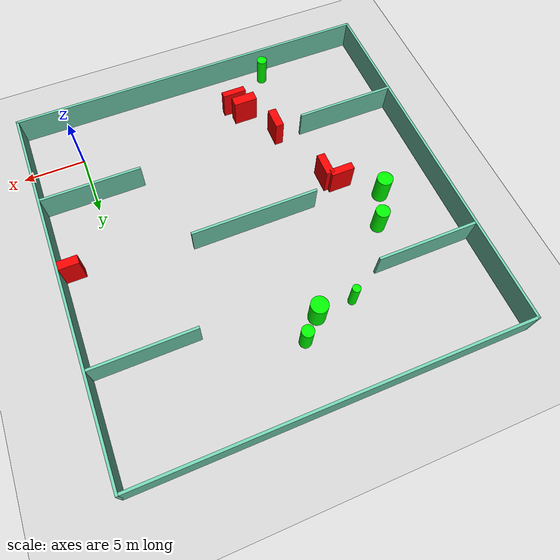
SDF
<sdf version="1.7">
 <world name="default">
  <light name="sun" type="directional">
   <pose>0 0 10 0 -0 0</pose>
   <diffuse>0.8 0.8 0.8 1</diffuse>
   <specular>0.2 0.2 0.2 1</specular>
   <attenuation>
    <range>1000</range>
    <constant>0.9</constant>
    <linear>0.01</linear>
    <quadratic>0.001</quadratic>
   </attenuation>
   <direction>-0.5 0.1 -0.9</direction>
   <spot><inner_angle>0</inner_angle><outer_angle>0</outer_angle><falloff>0</falloff></spot>
  </light>
  <model name="ground_plane">
   <static>1</static>
   <link name="link">
    <collision name="collision">
     <geometry><plane><normal>0 0 1</normal><size>100 100</size></plane></geometry>
     <surface>
      <contact><collide_bitmask>65535</collide_bitmask></contact>
      <friction><ode><mu>100</mu><mu2>50</mu2></ode></friction>
     </surface>
    </collision>
    <visual name="visual">
     <cast_shadows>0</cast_shadows>
     <geometry><plane><normal>0 0 1</normal><size>100 100</size></plane></geometry>
     <material>
      <script><uri>file://media/materials/scripts/gazebo.material</uri><name>Gazebo/Grey</name></script>
     </material>
    </visual>
   </link>
  </model>
  <gravity>0 0 -9.8</gravity>
  <magnetic_field>6e-06 2.3e-05 -4.2e-05</magnetic_field>
  <atmosphere type="adiabatic"/>
  <physics type="ode">
   <max_step_size>0.001</max_step_size>
   <real_time_factor>1</real_time_factor>
   <real_time_update_rate>1000</real_time_update_rate>
  </physics>
  <scene><ambient>0.4 0.4 0.4 1</ambient><background>0.7 0.7 0.7 1</background><shadows>1</shadows></scene>
  <spherical_coordinates>
   <surface_model>EARTH_WGS84</surface_model>
   <latitude_deg>0</latitude_deg>
   <longitude_deg>0</longitude_deg>
   <elevation>0</elevation>
   <heading_deg>0</heading_deg>
  </spherical_coordinates>
  <model name="my_base_walls">
   <link name="Wall_10">
    <collision name="Wall_10_Collision">
     <geometry><box><size>8.2 0.2 2.5</size></box></geometry>
     <pose>0 0 1.25 0 -0 0</pose>
    </collision>
    <visual name="Wall_10_Visual">
     <pose>0 0 1.25 0 -0 0</pose>
     <geometry><box><size>8.2 0.2 2.5</size></box></geometry>
     <material>
      <script><uri>file://media/materials/scripts/gazebo.material</uri><name>Gazebo/Grey</name></script>
      <ambient>0.435294 0.796078 0.67451 1</ambient>
     </material>
     <meta><layer>0</layer></meta>
    </visual>
    <pose>-11 -7 0 0 -0 0</pose>
   </link>
   <link name="Wall_12">
    <collision name="Wall_12_Collision">
     <geometry><box><size>8.2 0.2 2.5</size></box></geometry>
     <pose>0 0 1.25 0 -0 0</pose>
    </collision>
    <visual name="Wall_12_Visual">
     <pose>0 0 1.25 0 -0 0</pose>
     <geometry><box><size>8.2 0.2 2.5</size></box></geometry>
     <material>
      <script><uri>file://media/materials/scripts/gazebo.material</uri><name>Gazebo/Grey</name></script>
      <ambient>0.435294 0.796078 0.67451 1</ambient>
     </material>
     <meta><layer>0</layer></meta>
    </visual>
    <pose>-11 7 0 0 -0 0</pose>
   </link>
   <link name="Wall_14">
    <collision name="Wall_14_Collision">
     <geometry><box><size>8.2 0.2 2.5</size></box></geometry>
     <pose>0 0 1.25 0 -0 0</pose>
    </collision>
    <visual name="Wall_14_Visual">
     <pose>0 0 1.25 0 -0 0</pose>
     <geometry><box><size>8.2 0.2 2.5</size></box></geometry>
     <material>
      <script><uri>file://media/materials/scripts/gazebo.material</uri><name>Gazebo/Grey</name></script>
      <ambient>0.435294 0.796078 0.67451 1</ambient>
     </material>
     <meta><layer>0</layer></meta>
    </visual>
    <pose>11 7 0 0 -0 3.14159</pose>
   </link>
   <link name="Wall_16">
    <collision name="Wall_16_Collision">
     <geometry><box><size>10.2 0.2 2.5</size></box></geometry>
     <pose>0 0 1.25 0 -0 0</pose>
    </collision>
    <visual name="Wall_16_Visual">
     <pose>0 0 1.25 0 -0 0</pose>
     <geometry><box><size>10.2 0.2 2.5</size></box></geometry>
     <material>
      <script><uri>file://media/materials/scripts/gazebo.material</uri><name>Gazebo/Grey</name></script>
      <ambient>0.435294 0.796078 0.67451 1</ambient>
     </material>
     <meta><layer>0</layer></meta>
    </visual>
    <pose>0 0 0 0 -0 3.14159</pose>
   </link>
   <link name="Wall_2">
    <collision name="Wall_2_Collision">
     <geometry><box><size>30.2 0.2 2.5</size></box></geometry>
     <pose>0 0 1.25 0 -0 0</pose>
    </collision>
    <visual name="Wall_2_Visual">
     <pose>0 0 1.25 0 -0 0</pose>
     <geometry><box><size>30.2 0.2 2.5</size></box></geometry>
     <material>
      <script><uri>file://media/materials/scripts/gazebo.material</uri><name>Gazebo/Grey</name></script>
      <ambient>0.435294 0.796078 0.67451 1</ambient>
     </material>
     <meta><layer>0</layer></meta>
    </visual>
    <pose>0 -15 0 0 -0 3.14159</pose>
   </link>
   <link name="Wall_3">
    <collision name="Wall_3_Collision">
     <geometry><box><size>30.2 0.2 2.5</size></box></geometry>
     <pose>0 0 1.25 0 -0 0</pose>
    </collision>
    <visual name="Wall_3_Visual">
     <pose>0 0 1.25 0 -0 0</pose>
     <geometry><box><size>30.2 0.2 2.5</size></box></geometry>
     <material>
      <script><uri>file://media/materials/scripts/gazebo.material</uri><name>Gazebo/Grey</name></script>
      <ambient>0.435294 0.796078 0.67451 1</ambient>
     </material>
     <meta><layer>0</layer></meta>
    </visual>
    <pose>-15 0 0 0 -0 1.5708</pose>
   </link>
   <link name="Wall_4">
    <collision name="Wall_4_Collision">
     <geometry><box><size>30.2 0.2 2.5</size></box></geometry>
     <pose>0 0 1.25 0 -0 0</pose>
    </collision>
    <visual name="Wall_4_Visual">
     <pose>0 0 1.25 0 -0 0</pose>
     <geometry><box><size>30.2 0.2 2.5</size></box></geometry>
     <material>
      <script><uri>file://media/materials/scripts/gazebo.material</uri><name>Gazebo/Grey</name></script>
      <ambient>0.435294 0.796078 0.67451 1</ambient>
     </material>
     <meta><layer>0</layer></meta>
    </visual>
    <pose>0 15 0 0 -0 0</pose>
   </link>
   <link name="Wall_6">
    <collision name="Wall_6_Collision">
     <geometry><box><size>30.2 0.2 2.5</size></box></geometry>
     <pose>0 0 1.25 0 -0 0</pose>
    </collision>
    <visual name="Wall_6_Visual">
     <pose>0 0 1.25 0 -0 0</pose>
     <geometry><box><size>30.2 0.2 2.5</size></box></geometry>
     <material>
      <script><uri>file://media/materials/scripts/gazebo.material</uri><name>Gazebo/Grey</name></script>
      <ambient>0.435294 0.796078 0.67451 1</ambient>
     </material>
     <meta><layer>0</layer></meta>
    </visual>
    <pose>15 0 0 0 -0 1.5708</pose>
   </link>
   <link name="Wall_8">
    <collision name="Wall_8_Collision">
     <geometry><box><size>8.2 0.2 2.5</size></box></geometry>
     <pose>0 0 1.25 0 -0 0</pose>
    </collision>
    <visual name="Wall_8_Visual">
     <pose>0 0 1.25 0 -0 0</pose>
     <geometry><box><size>8.2 0.2 2.5</size></box></geometry>
     <material>
      <script><uri>file://media/materials/scripts/gazebo.material</uri><name>Gazebo/Grey</name></script>
      <ambient>0.435294 0.796078 0.67451 1</ambient>
     </material>
     <meta><layer>0</layer></meta>
    </visual>
    <pose>11 -7 0 0 -0 3.14159</pose>
   </link>
   <static>1</static>
   <pose>-11 11 0 0 -0 0</pose>
  </model>
  <model name="cylinder1">
   <static>1</static>
   <link name="link">
    <inertial>
     <mass>1</mass>
     <inertia><ixx>0.5</ixx><ixy>0</ixy><ixz>0</ixz><iyy>0.5</iyy><iyz>0</iyz><izz>1</izz></inertia>
    </inertial>
    <collision name="collision">
     <geometry><cylinder><radius>0.5588582032144873</radius><length>2.5</length></cylinder></geometry>
    </collision>
    <visual name="visual">
     <geometry><cylinder><radius>0.5588582032144873</radius><length>2.5</length></cylinder></geometry>
     <material>
      <ambient>0 1 0 1</ambient>
      <diffuse>0 1 0 1</diffuse>
      <specular>0.1 0.1 0.1 1</specular>
      <emissive>0 0 0 0</emissive>
     </material>
    </visual>
   </link>
   <pose>-19.963105979687537 14.566138077887445 1.25 0 0 0</pose>
  </model>
  <model name="cylinder2">
   <static>1</static>
   <link name="link">
    <inertial>
     <mass>1</mass>
     <inertia><ixx>0.5</ixx><ixy>0</ixy><ixz>0</ixz><iyy>0.5</iyy><iyz>0</iyz><izz>1</izz></inertia>
    </inertial>
    <collision name="collision">
     <geometry><cylinder><radius>0.6671238472813816</radius><length>2.5</length></cylinder></geometry>
    </collision>
    <visual name="visual">
     <geometry><cylinder><radius>0.6671238472813816</radius><length>2.5</length></cylinder></geometry>
     <material>
      <ambient>0 1 0 1</ambient>
      <diffuse>0 1 0 1</diffuse>
      <specular>0.1 0.1 0.1 1</specular>
      <emissive>0 0 0 0</emissive>
     </material>
    </visual>
   </link>
   <pose>-12.386513296379604 19.587198791284244 1.25 0 0 0</pose>
  </model>
  <model name="cylinder3">
   <static>1</static>
   <link name="link">
    <inertial>
     <mass>1</mass>
     <inertia><ixx>0.5</ixx><ixy>0</ixy><ixz>0</ixz><iyy>0.5</iyy><iyz>0</iyz><izz>1</izz></inertia>
    </inertial>
    <collision name="collision">
     <geometry><cylinder><radius>0.4214650918057804</radius><length>2.5</length></cylinder></geometry>
    </collision>
    <visual name="visual">
     <geometry><cylinder><radius>0.4214650918057804</radius><length>2.5</length></cylinder></geometry>
     <material>
      <ambient>0 1 0 1</ambient>
      <diffuse>0 1 0 1</diffuse>
      <specular>0.1 0.1 0.1 1</specular>
      <emissive>0 0 0 0</emissive>
     </material>
    </visual>
   </link>
   <pose>-17.17963439554217 -2.818555305798168 1.25 0 0 0</pose>
  </model>
  <model name="cylinder4">
   <static>1</static>
   <link name="link">
    <inertial>
     <mass>1</mass>
     <inertia><ixx>0.5</ixx><ixy>0</ixy><ixz>0</ixz><iyy>0.5</iyy><iyz>0</iyz><izz>1</izz></inertia>
    </inertial>
    <collision name="collision">
     <geometry><cylinder><radius>0.47412017186130206</radius><length>2.5</length></cylinder></geometry>
    </collision>
    <visual name="visual">
     <geometry><cylinder><radius>0.47412017186130206</radius><length>2.5</length></cylinder></geometry>
     <material>
      <ambient>0 1 0 1</ambient>
      <diffuse>0 1 0 1</diffuse>
      <specular>0.1 0.1 0.1 1</specular>
      <emissive>0 0 0 0</emissive>
     </material>
    </visual>
   </link>
   <pose>-10.857644709719553 20.999874249216035 1.25 0 0 0</pose>
  </model>
  <model name="cylinder5">
   <static>1</static>
   <link name="link">
    <inertial>
     <mass>1</mass>
     <inertia><ixx>0.5</ixx><ixy>0</ixy><ixz>0</ixz><iyy>0.5</iyy><iyz>0</iyz><izz>1</izz></inertia>
    </inertial>
    <collision name="collision">
     <geometry><cylinder><radius>0.31796051744195464</radius><length>2.5</length></cylinder></geometry>
    </collision>
    <visual name="visual">
     <geometry><cylinder><radius>0.31796051744195464</radius><length>2.5</length></cylinder></geometry>
     <material>
      <ambient>0 1 0 1</ambient>
      <diffuse>0 1 0 1</diffuse>
      <specular>0.1 0.1 0.1 1</specular>
      <emissive>0 0 0 0</emissive>
     </material>
    </visual>
   </link>
   <pose>-15.322027999451715 19.437191563345056 1.25 0 0 0</pose>
  </model>
  <model name="cylinder6">
   <static>1</static>
   <link name="link">
    <inertial>
     <mass>1</mass>
     <inertia><ixx>0.5</ixx><ixy>0</ixy><ixz>0</ixz><iyy>0.5</iyy><iyz>0</iyz><izz>1</izz></inertia>
    </inertial>
    <collision name="collision">
     <geometry><cylinder><radius>0.6276491564176603</radius><length>2.5</length></cylinder></geometry>
    </collision>
    <visual name="visual">
     <geometry><cylinder><radius>0.6276491564176603</radius><length>2.5</length></cylinder></geometry>
     <material>
      <ambient>0 1 0 1</ambient>
      <diffuse>0 1 0 1</diffuse>
      <specular>0.1 0.1 0.1 1</specular>
      <emissive>0 0 0 0</emissive>
     </material>
    </visual>
   </link>
   <pose>-21.466237744196143 12.048290866379793 1.25 0 0 0</pose>
  </model>
  <model name="box1">
   <static>1</static>
   <link name="link">
    <inertial>
     <mass>1</mass>
     <inertia><ixx>0.083</ixx><ixy>0</ixy><ixz>0</ixz><iyy>0.083</iyy><iyz>0</iyz><izz>0.083</izz></inertia>
    </inertial>
    <collision name="collision">
     <geometry><box><size>0.6551913076452598 1.8951886869540067 2.5</size></box></geometry>
    </collision>
    <visual name="visual">
     <geometry><box><size>0.6551913076452598 1.8951886869540067 2.5</size></box></geometry>
     <material>
      <ambient>1 0 0 1</ambient>
      <diffuse>1 0 0 1</diffuse>
      <specular>0.1 0.1 0.1 1</specular>
      <emissive>0 0 0 0</emissive>
     </material>
    </visual>
    <sensor name="my_contact" type="contact">
     <contact><collision>box_collision</collision><topic>__default_topic__</topic></contact>
    </sensor>
   </link>
   <pose>-17.757029643656605 9.080850727454159 1.25 0 0 0</pose>
  </model>
  <model name="box2">
   <static>1</static>
   <link name="link">
    <inertial>
     <mass>1</mass>
     <inertia><ixx>0.083</ixx><ixy>0</ixy><ixz>0</ixz><iyy>0.083</iyy><iyz>0</iyz><izz>0.083</izz></inertia>
    </inertial>
    <collision name="collision">
     <geometry><box><size>0.6752672432906754 1.7461128963984731 2.5</size></box></geometry>
    </collision>
    <visual name="visual">
     <geometry><box><size>0.6752672432906754 1.7461128963984731 2.5</size></box></geometry>
     <material>
      <ambient>1 0 0 1</ambient>
      <diffuse>1 0 0 1</diffuse>
      <specular>0.1 0.1 0.1 1</specular>
      <emissive>0 0 0 0</emissive>
     </material>
    </visual>
    <sensor name="my_contact" type="contact">
     <contact><collision>box_collision</collision><topic>__default_topic__</topic></contact>
    </sensor>
   </link>
   <pose>-15.872242829329572 3.428533248529111 1.25 0 0 0</pose>
  </model>
  <model name="box3">
   <static>1</static>
   <link name="link">
    <inertial>
     <mass>1</mass>
     <inertia><ixx>0.083</ixx><ixy>0</ixy><ixz>0</ixz><iyy>0.083</iyy><iyz>0</iyz><izz>0.083</izz></inertia>
    </inertial>
    <collision name="collision">
     <geometry><box><size>1.5898282219106443 0.7063874891403803 2.5</size></box></geometry>
    </collision>
    <visual name="visual">
     <geometry><box><size>1.5898282219106443 0.7063874891403803 2.5</size></box></geometry>
     <material>
      <ambient>1 0 0 1</ambient>
      <diffuse>1 0 0 1</diffuse>
      <specular>0.1 0.1 0.1 1</specular>
      <emissive>0 0 0 0</emissive>
     </material>
    </visual>
    <sensor name="my_contact" type="contact">
     <contact><collision>box_collision</collision><topic>__default_topic__</topic></contact>
    </sensor>
   </link>
   <pose>3.1399402918366768 9.910116442540998 1.25 0 0 0</pose>
  </model>
  <model name="box4">
   <static>1</static>
   <link name="link">
    <inertial>
     <mass>1</mass>
     <inertia><ixx>0.083</ixx><ixy>0</ixy><ixz>0</ixz><iyy>0.083</iyy><iyz>0</iyz><izz>0.083</izz></inertia>
    </inertial>
    <collision name="collision">
     <geometry><box><size>1.8948833925484885 0.6053473099186543 2.5</size></box></geometry>
    </collision>
    <visual name="visual">
     <geometry><box><size>1.8948833925484885 0.6053473099186543 2.5</size></box></geometry>
     <material>
      <ambient>1 0 0 1</ambient>
      <diffuse>1 0 0 1</diffuse>
      <specular>0.1 0.1 0.1 1</specular>
      <emissive>0 0 0 0</emissive>
     </material>
    </visual>
    <sensor name="my_contact" type="contact">
     <contact><collision>box_collision</collision><topic>__default_topic__</topic></contact>
    </sensor>
   </link>
   <pose>-18.732351054215243 10.010918917834594 1.25 0 0 0</pose>
  </model>
  <model name="box5">
   <static>1</static>
   <link name="link">
    <inertial>
     <mass>1</mass>
     <inertia><ixx>0.083</ixx><ixy>0</ixy><ixz>0</ixz><iyy>0.083</iyy><iyz>0</iyz><izz>0.083</izz></inertia>
    </inertial>
    <collision name="collision">
     <geometry><box><size>1.9388761825604108 0.8182233385921898 2.5</size></box></geometry>
    </collision>
    <visual name="visual">
     <geometry><box><size>1.9388761825604108 0.8182233385921898 2.5</size></box></geometry>
     <material>
      <ambient>1 0 0 1</ambient>
      <diffuse>1 0 0 1</diffuse>
      <specular>0.1 0.1 0.1 1</specular>
      <emissive>0 0 0 0</emissive>
     </material>
    </visual>
    <sensor name="my_contact" type="contact">
     <contact><collision>box_collision</collision><topic>__default_topic__</topic></contact>
    </sensor>
   </link>
   <pose>-14.182984801424995 0.5885839872683296 1.25 0 0 0</pose>
  </model>
  <model name="box6">
   <static>1</static>
   <link name="link">
    <inertial>
     <mass>1</mass>
     <inertia><ixx>0.083</ixx><ixy>0</ixy><ixz>0</ixz><iyy>0.083</iyy><iyz>0</iyz><izz>0.083</izz></inertia>
    </inertial>
    <collision name="collision">
     <geometry><box><size>1.9481093898479482 0.5059536213979063 2.5</size></box></geometry>
    </collision>
    <visual name="visual">
     <geometry><box><size>1.9481093898479482 0.5059536213979063 2.5</size></box></geometry>
     <material>
      <ambient>1 0 0 1</ambient>
      <diffuse>1 0 0 1</diffuse>
      <specular>0.1 0.1 0.1 1</specular>
      <emissive>0 0 0 0</emissive>
     </material>
    </visual>
    <sensor name="my_contact" type="contact">
     <contact><collision>box_collision</collision><topic>__default_topic__</topic></contact>
    </sensor>
   </link>
   <pose>-13.626633247469922 -0.4392711966612053 1.25 0 0 0</pose>
  </model>
 </world>
</sdf>
